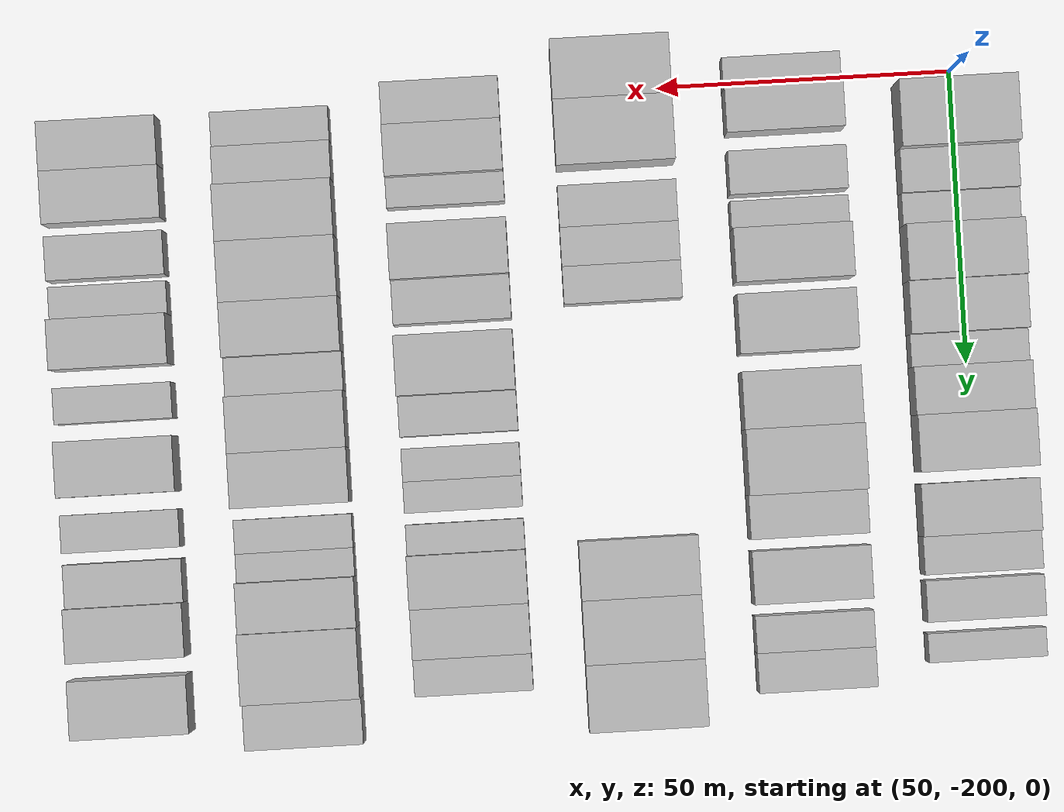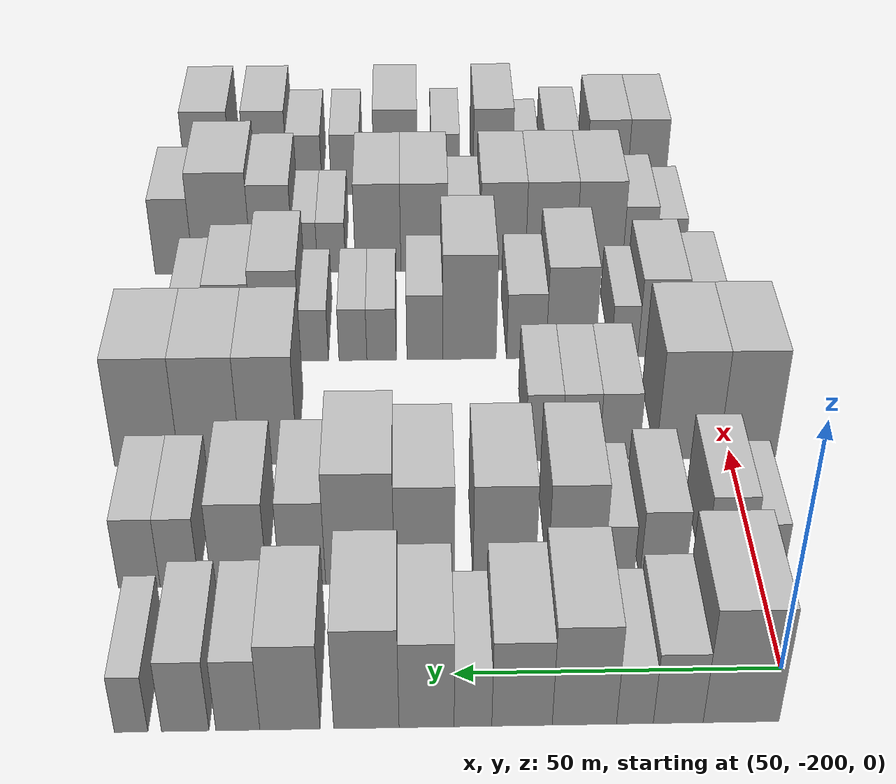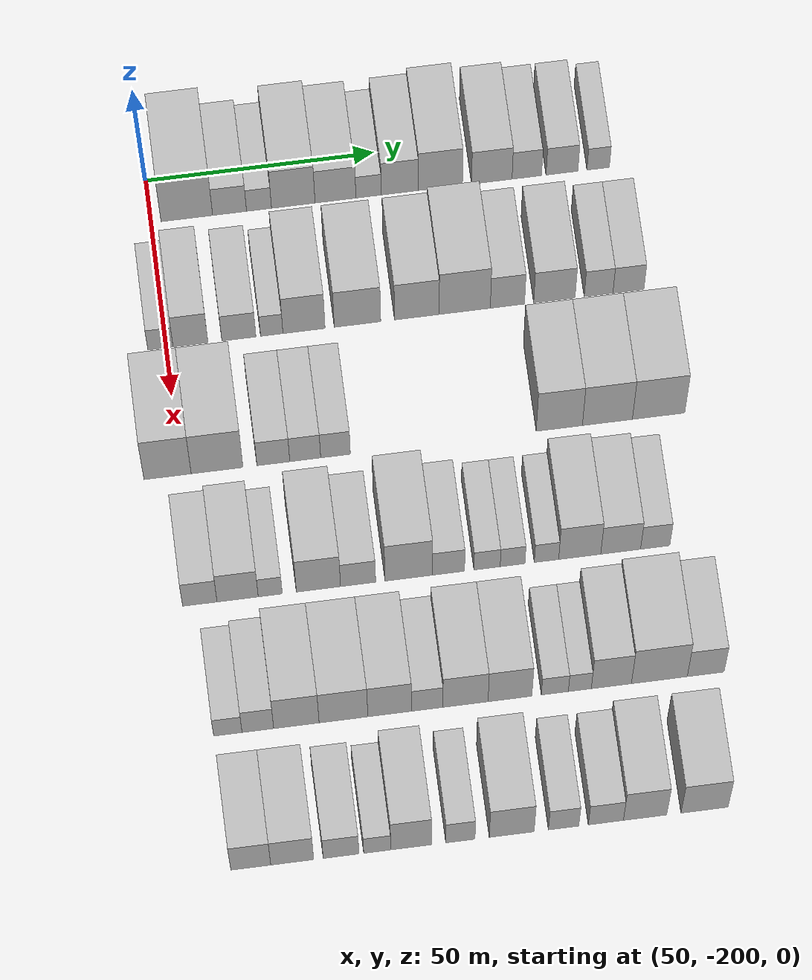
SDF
<sdf version="1.6">
 <world name="default">
  <model name="building_35">
   <static>1</static>
   <pose>50.0000 -192.1654 0 0.000000 0.000000 0.000000</pose>
   <link name="link">
    <pose>0 0 12.00 0 0 0</pose>
    <collision name="collision"><geometry><box><size>20.0000 11.2546 24.0000</size></box></geometry></collision>
    <visual name="visual">
     <cast_shadows>0</cast_shadows>
     <geometry><box><size>20.0000 11.2546 24.0000</size></box></geometry>
     <material>
      <script>
       <uri>model://HANNAS_wall/materials/scripts</uri>
       <uri>model://HANNAS_wall/materials/textures</uri>
       <name>vrc/HANNAS_wall</name>
      </script>
     </material>
    </visual>
   </link>
  </model>
  <model name="building_36">
   <static>1</static>
   <pose>50.0000 -182.8421 0 0.000000 0.000000 0.000000</pose>
   <link name="link">
    <pose>0 0 7.50 0 0 0</pose>
    <collision name="collision"><geometry><box><size>20.0000 7.3919 15.0000</size></box></geometry></collision>
    <visual name="visual">
     <cast_shadows>0</cast_shadows>
     <geometry><box><size>20.0000 7.3919 15.0000</size></box></geometry>
     <material>
      <script>
       <uri>model://HANNAS_wall/materials/scripts</uri>
       <uri>model://HANNAS_wall/materials/textures</uri>
       <name>vrc/HANNAS_wall</name>
      </script>
     </material>
    </visual>
   </link>
  </model>
  <model name="building_37">
   <static>1</static>
   <pose>50.0000 -176.4204 0 0.000000 0.000000 0.000000</pose>
   <link name="link">
    <pose>0 0 6.00 0 0 0</pose>
    <collision name="collision"><geometry><box><size>20.0000 5.4515 12.0000</size></box></geometry></collision>
    <visual name="visual">
     <cast_shadows>0</cast_shadows>
     <geometry><box><size>20.0000 5.4515 12.0000</size></box></geometry>
     <material>
      <script>
       <uri>model://HANNAS_wall/materials/scripts</uri>
       <uri>model://HANNAS_wall/materials/textures</uri>
       <name>vrc/HANNAS_wall</name>
      </script>
     </material>
    </visual>
   </link>
  </model>
  <model name="building_38">
   <static>1</static>
   <pose>50.0000 -168.9401 0 0.000000 0.000000 0.000000</pose>
   <link name="link">
    <pose>0 0 10.50 0 0 0</pose>
    <collision name="collision"><geometry><box><size>20.0000 9.5092 21.0000</size></box></geometry></collision>
    <visual name="visual">
     <cast_shadows>0</cast_shadows>
     <geometry><box><size>20.0000 9.5092 21.0000</size></box></geometry>
     <material>
      <script>
       <uri>model://HANNAS_wall/materials/scripts</uri>
       <uri>model://HANNAS_wall/materials/textures</uri>
       <name>vrc/HANNAS_wall</name>
      </script>
     </material>
    </visual>
   </link>
  </model>
  <model name="building_39">
   <static>1</static>
   <pose>50.0000 -159.7231 0 0.000000 0.000000 0.000000</pose>
   <link name="link">
    <pose>0 0 9.00 0 0 0</pose>
    <collision name="collision"><geometry><box><size>20.0000 8.9248 18.0000</size></box></geometry></collision>
    <visual name="visual">
     <cast_shadows>0</cast_shadows>
     <geometry><box><size>20.0000 8.9248 18.0000</size></box></geometry>
     <material>
      <script>
       <uri>model://HANNAS_wall/materials/scripts</uri>
       <uri>model://HANNAS_wall/materials/textures</uri>
       <name>vrc/HANNAS_wall</name>
      </script>
     </material>
    </visual>
   </link>
  </model>
  <model name="building_40">
   <static>1</static>
   <pose>50.0000 -152.4806 0 0.000000 0.000000 0.000000</pose>
   <link name="link">
    <pose>0 0 6.00 0 0 0</pose>
    <collision name="collision"><geometry><box><size>20.0000 5.5600 12.0000</size></box></geometry></collision>
    <visual name="visual">
     <cast_shadows>0</cast_shadows>
     <geometry><box><size>20.0000 5.5600 12.0000</size></box></geometry>
     <material>
      <script>
       <uri>model://HANNAS_wall/materials/scripts</uri>
       <uri>model://HANNAS_wall/materials/textures</uri>
       <name>vrc/HANNAS_wall</name>
      </script>
     </material>
    </visual>
   </link>
  </model>
  <model name="building_41">
   <static>1</static>
   <pose>50.0000 -145.6434 0 0.000000 0.000000 0.000000</pose>
   <link name="link">
    <pose>0 0 9.00 0 0 0</pose>
    <collision name="collision"><geometry><box><size>20.0000 8.1144 18.0000</size></box></geometry></collision>
    <visual name="visual">
     <cast_shadows>0</cast_shadows>
     <geometry><box><size>20.0000 8.1144 18.0000</size></box></geometry>
     <material>
      <script>
       <uri>model://HANNAS_wall/materials/scripts</uri>
       <uri>model://HANNAS_wall/materials/textures</uri>
       <name>vrc/HANNAS_wall</name>
      </script>
     </material>
    </visual>
   </link>
  </model>
  <model name="building_42">
   <static>1</static>
   <pose>50.0000 -136.7708 0 0.000000 0.000000 0.000000</pose>
   <link name="link">
    <pose>0 0 10.50 0 0 0</pose>
    <collision name="collision"><geometry><box><size>20.0000 9.6309 21.0000</size></box></geometry></collision>
    <visual name="visual">
     <cast_shadows>0</cast_shadows>
     <geometry><box><size>20.0000 9.6309 21.0000</size></box></geometry>
     <material>
      <script>
       <uri>model://HANNAS_wall/materials/scripts</uri>
       <uri>model://HANNAS_wall/materials/textures</uri>
       <name>vrc/HANNAS_wall</name>
      </script>
     </material>
    </visual>
   </link>
  </model>
  <model name="building_43">
   <static>1</static>
   <pose>50.0000 -125.5230 0 0.000000 0.000000 0.000000</pose>
   <link name="link">
    <pose>0 0 9.00 0 0 0</pose>
    <collision name="collision"><geometry><box><size>20.0000 8.8646 18.0000</size></box></geometry></collision>
    <visual name="visual">
     <cast_shadows>0</cast_shadows>
     <geometry><box><size>20.0000 8.8646 18.0000</size></box></geometry>
     <material>
      <script>
       <uri>model://HANNAS_wall/materials/scripts</uri>
       <uri>model://HANNAS_wall/materials/textures</uri>
       <name>vrc/HANNAS_wall</name>
      </script>
     </material>
    </visual>
   </link>
  </model>
  <model name="building_44">
   <static>1</static>
   <pose>50.0000 -117.8614 0 0.000000 0.000000 0.000000</pose>
   <link name="link">
    <pose>0 0 7.50 0 0 0</pose>
    <collision name="collision"><geometry><box><size>20.0000 6.4587 15.0000</size></box></geometry></collision>
    <visual name="visual">
     <cast_shadows>0</cast_shadows>
     <geometry><box><size>20.0000 6.4587 15.0000</size></box></geometry>
     <material>
      <script>
       <uri>model://HANNAS_wall/materials/scripts</uri>
       <uri>model://HANNAS_wall/materials/textures</uri>
       <name>vrc/HANNAS_wall</name>
      </script>
     </material>
    </visual>
   </link>
  </model>
  <model name="building_45">
   <static>1</static>
   <pose>50.0000 -110.1419 0 0.000000 0.000000 0.000000</pose>
   <link name="link">
    <pose>0 0 7.50 0 0 0</pose>
    <collision name="collision"><geometry><box><size>20.0000 6.9802 15.0000</size></box></geometry></collision>
    <visual name="visual">
     <cast_shadows>0</cast_shadows>
     <geometry><box><size>20.0000 6.9802 15.0000</size></box></geometry>
     <material>
      <script>
       <uri>model://HANNAS_wall/materials/scripts</uri>
       <uri>model://HANNAS_wall/materials/textures</uri>
       <name>vrc/HANNAS_wall</name>
      </script>
     </material>
    </visual>
   </link>
  </model>
  <model name="building_46">
   <static>1</static>
   <pose>50.0000 -102.1962 0 0.000000 0.000000 0.000000</pose>
   <link name="link">
    <pose>0 0 6.00 0 0 0</pose>
    <collision name="collision"><geometry><box><size>20.0000 4.9113 12.0000</size></box></geometry></collision>
    <visual name="visual">
     <cast_shadows>0</cast_shadows>
     <geometry><box><size>20.0000 4.9113 12.0000</size></box></geometry>
     <material>
      <script>
       <uri>model://HANNAS_wall/materials/scripts</uri>
       <uri>model://HANNAS_wall/materials/textures</uri>
       <name>vrc/HANNAS_wall</name>
      </script>
     </material>
    </visual>
   </link>
  </model>
  <model name="building_152">
   <static>1</static>
   <pose>79.0000 -201.1668 0 0.000000 0.000000 0.000000</pose>
   <link name="link">
    <pose>0 0 6.00 0 0 0</pose>
    <collision name="collision"><geometry><box><size>20.0000 5.4453 12.0000</size></box></geometry></collision>
    <visual name="visual">
     <cast_shadows>0</cast_shadows>
     <geometry><box><size>20.0000 5.4453 12.0000</size></box></geometry>
     <material>
      <script>
       <uri>model://HANNAS_wall/materials/scripts</uri>
       <uri>model://HANNAS_wall/materials/textures</uri>
       <name>vrc/HANNAS_wall</name>
      </script>
     </material>
    </visual>
   </link>
  </model>
  <model name="building_153">
   <static>1</static>
   <pose>79.0000 -194.6718 0 0.000000 0.000000 0.000000</pose>
   <link name="link">
    <pose>0 0 9.00 0 0 0</pose>
    <collision name="collision"><geometry><box><size>20.0000 7.5448 18.0000</size></box></geometry></collision>
    <visual name="visual">
     <cast_shadows>0</cast_shadows>
     <geometry><box><size>20.0000 7.5448 18.0000</size></box></geometry>
     <material>
      <script>
       <uri>model://HANNAS_wall/materials/scripts</uri>
       <uri>model://HANNAS_wall/materials/textures</uri>
       <name>vrc/HANNAS_wall</name>
      </script>
     </material>
    </visual>
   </link>
  </model>
  <model name="building_154">
   <static>1</static>
   <pose>79.0000 -184.2178 0 0.000000 0.000000 0.000000</pose>
   <link name="link">
    <pose>0 0 7.50 0 0 0</pose>
    <collision name="collision"><geometry><box><size>20.0000 7.3632 15.0000</size></box></geometry></collision>
    <visual name="visual">
     <cast_shadows>0</cast_shadows>
     <geometry><box><size>20.0000 7.3632 15.0000</size></box></geometry>
     <material>
      <script>
       <uri>model://HANNAS_wall/materials/scripts</uri>
       <uri>model://HANNAS_wall/materials/textures</uri>
       <name>vrc/HANNAS_wall</name>
      </script>
     </material>
    </visual>
   </link>
  </model>
  <model name="building_155">
   <static>1</static>
   <pose>79.0000 -177.1134 0 0.000000 0.000000 0.000000</pose>
   <link name="link">
    <pose>0 0 6.00 0 0 0</pose>
    <collision name="collision"><geometry><box><size>20.0000 4.8456 12.0000</size></box></geometry></collision>
    <visual name="visual">
     <cast_shadows>0</cast_shadows>
     <geometry><box><size>20.0000 4.8456 12.0000</size></box></geometry>
     <material>
      <script>
       <uri>model://HANNAS_wall/materials/scripts</uri>
       <uri>model://HANNAS_wall/materials/textures</uri>
       <name>vrc/HANNAS_wall</name>
      </script>
     </material>
    </visual>
   </link>
  </model>
  <model name="building_156">
   <static>1</static>
   <pose>79.0000 -170.1355 0 0.000000 0.000000 0.000000</pose>
   <link name="link">
    <pose>0 0 10.50 0 0 0</pose>
    <collision name="collision"><geometry><box><size>20.0000 9.1101 21.0000</size></box></geometry></collision>
    <visual name="visual">
     <cast_shadows>0</cast_shadows>
     <geometry><box><size>20.0000 9.1101 21.0000</size></box></geometry>
     <material>
      <script>
       <uri>model://HANNAS_wall/materials/scripts</uri>
       <uri>model://HANNAS_wall/materials/textures</uri>
       <name>vrc/HANNAS_wall</name>
      </script>
     </material>
    </visual>
   </link>
  </model>
  <model name="building_157">
   <static>1</static>
   <pose>79.0000 -158.5500 0 0.000000 0.000000 0.000000</pose>
   <link name="link">
    <pose>0 0 10.50 0 0 0</pose>
    <collision name="collision"><geometry><box><size>20.0000 10.0609 21.0000</size></box></geometry></collision>
    <visual name="visual">
     <cast_shadows>0</cast_shadows>
     <geometry><box><size>20.0000 10.0609 21.0000</size></box></geometry>
     <material>
      <script>
       <uri>model://HANNAS_wall/materials/scripts</uri>
       <uri>model://HANNAS_wall/materials/textures</uri>
       <name>vrc/HANNAS_wall</name>
      </script>
     </material>
    </visual>
   </link>
  </model>
  <model name="building_158">
   <static>1</static>
   <pose>79.0000 -145.6790 0 0.000000 0.000000 0.000000</pose>
   <link name="link">
    <pose>0 0 10.50 0 0 0</pose>
    <collision name="collision"><geometry><box><size>20.0000 9.6811 21.0000</size></box></geometry></collision>
    <visual name="visual">
     <cast_shadows>0</cast_shadows>
     <geometry><box><size>20.0000 9.6811 21.0000</size></box></geometry>
     <material>
      <script>
       <uri>model://HANNAS_wall/materials/scripts</uri>
       <uri>model://HANNAS_wall/materials/textures</uri>
       <name>vrc/HANNAS_wall</name>
      </script>
     </material>
    </visual>
   </link>
  </model>
  <model name="building_159">
   <static>1</static>
   <pose>79.0000 -135.2910 0 0.000000 0.000000 0.000000</pose>
   <link name="link">
    <pose>0 0 12.00 0 0 0</pose>
    <collision name="collision"><geometry><box><size>20.0000 11.0948 24.0000</size></box></geometry></collision>
    <visual name="visual">
     <cast_shadows>0</cast_shadows>
     <geometry><box><size>20.0000 11.0948 24.0000</size></box></geometry>
     <material>
      <script>
       <uri>model://HANNAS_wall/materials/scripts</uri>
       <uri>model://HANNAS_wall/materials/textures</uri>
       <name>vrc/HANNAS_wall</name>
      </script>
     </material>
    </visual>
   </link>
  </model>
  <model name="building_160">
   <static>1</static>
   <pose>79.0000 -126.0331 0 0.000000 0.000000 0.000000</pose>
   <link name="link">
    <pose>0 0 9.00 0 0 0</pose>
    <collision name="collision"><geometry><box><size>20.0000 7.4209 18.0000</size></box></geometry></collision>
    <visual name="visual">
     <cast_shadows>0</cast_shadows>
     <geometry><box><size>20.0000 7.4209 18.0000</size></box></geometry>
     <material>
      <script>
       <uri>model://HANNAS_wall/materials/scripts</uri>
       <uri>model://HANNAS_wall/materials/textures</uri>
       <name>vrc/HANNAS_wall</name>
      </script>
     </material>
    </visual>
   </link>
  </model>
  <model name="building_161">
   <static>1</static>
   <pose>79.0000 -115.8313 0 0.000000 0.000000 0.000000</pose>
   <link name="link">
    <pose>0 0 9.00 0 0 0</pose>
    <collision name="collision"><geometry><box><size>20.0000 8.9827 18.0000</size></box></geometry></collision>
    <visual name="visual">
     <cast_shadows>0</cast_shadows>
     <geometry><box><size>20.0000 8.9827 18.0000</size></box></geometry>
     <material>
      <script>
       <uri>model://HANNAS_wall/materials/scripts</uri>
       <uri>model://HANNAS_wall/materials/textures</uri>
       <name>vrc/HANNAS_wall</name>
      </script>
     </material>
    </visual>
   </link>
  </model>
  <model name="building_162">
   <static>1</static>
   <pose>79.0000 -106.2159 0 0.000000 0.000000 0.000000</pose>
   <link name="link">
    <pose>0 0 7.50 0 0 0</pose>
    <collision name="collision"><geometry><box><size>20.0000 6.2481 15.0000</size></box></geometry></collision>
    <visual name="visual">
     <cast_shadows>0</cast_shadows>
     <geometry><box><size>20.0000 6.2481 15.0000</size></box></geometry>
     <material>
      <script>
       <uri>model://HANNAS_wall/materials/scripts</uri>
       <uri>model://HANNAS_wall/materials/textures</uri>
       <name>vrc/HANNAS_wall</name>
      </script>
     </material>
    </visual>
   </link>
  </model>
  <model name="building_163">
   <static>1</static>
   <pose>79.0000 -99.7257 0 0.000000 0.000000 0.000000</pose>
   <link name="link">
    <pose>0 0 7.50 0 0 0</pose>
    <collision name="collision"><geometry><box><size>20.0000 6.7324 15.0000</size></box></geometry></collision>
    <visual name="visual">
     <cast_shadows>0</cast_shadows>
     <geometry><box><size>20.0000 6.7324 15.0000</size></box></geometry>
     <material>
      <script>
       <uri>model://HANNAS_wall/materials/scripts</uri>
       <uri>model://HANNAS_wall/materials/textures</uri>
       <name>vrc/HANNAS_wall</name>
      </script>
     </material>
    </visual>
   </link>
  </model>
  <model name="building_263">
   <static>1</static>
   <pose>108.0000 -202.8969 0 0.000000 0.000000 0.000000</pose>
   <link name="link">
    <pose>0 0 12.00 0 0 0</pose>
    <collision name="collision"><geometry><box><size>20.0000 10.1087 24.0000</size></box></geometry></collision>
    <visual name="visual">
     <cast_shadows>0</cast_shadows>
     <geometry><box><size>20.0000 10.1087 24.0000</size></box></geometry>
     <material>
      <script>
       <uri>model://HANNAS_wall/materials/scripts</uri>
       <uri>model://HANNAS_wall/materials/textures</uri>
       <name>vrc/HANNAS_wall</name>
      </script>
     </material>
    </visual>
   </link>
  </model>
  <model name="building_264">
   <static>1</static>
   <pose>108.0000 -192.3039 0 0.000000 0.000000 0.000000</pose>
   <link name="link">
    <pose>0 0 12.00 0 0 0</pose>
    <collision name="collision"><geometry><box><size>20.0000 11.0774 24.0000</size></box></geometry></collision>
    <visual name="visual">
     <cast_shadows>0</cast_shadows>
     <geometry><box><size>20.0000 11.0774 24.0000</size></box></geometry>
     <material>
      <script>
       <uri>model://HANNAS_wall/materials/scripts</uri>
       <uri>model://HANNAS_wall/materials/textures</uri>
       <name>vrc/HANNAS_wall</name>
      </script>
     </material>
    </visual>
   </link>
  </model>
  <model name="building_265">
   <static>1</static>
   <pose>108.0000 -180.2447 0 0.000000 0.000000 0.000000</pose>
   <link name="link">
    <pose>0 0 7.50 0 0 0</pose>
    <collision name="collision"><geometry><box><size>20.0000 7.0409 15.0000</size></box></geometry></collision>
    <visual name="visual">
     <cast_shadows>0</cast_shadows>
     <geometry><box><size>20.0000 7.0409 15.0000</size></box></geometry>
     <material>
      <script>
       <uri>model://HANNAS_wall/materials/scripts</uri>
       <uri>model://HANNAS_wall/materials/textures</uri>
       <name>vrc/HANNAS_wall</name>
      </script>
     </material>
    </visual>
   </link>
  </model>
  <model name="building_266">
   <static>1</static>
   <pose>108.0000 -173.4134 0 0.000000 0.000000 0.000000</pose>
   <link name="link">
    <pose>0 0 7.50 0 0 0</pose>
    <collision name="collision"><geometry><box><size>20.0000 6.6218 15.0000</size></box></geometry></collision>
    <visual name="visual">
     <cast_shadows>0</cast_shadows>
     <geometry><box><size>20.0000 6.6218 15.0000</size></box></geometry>
     <material>
      <script>
       <uri>model://HANNAS_wall/materials/scripts</uri>
       <uri>model://HANNAS_wall/materials/textures</uri>
       <name>vrc/HANNAS_wall</name>
      </script>
     </material>
    </visual>
   </link>
  </model>
  <model name="building_267">
   <static>1</static>
   <pose>108.0000 -166.9191 0 0.000000 0.000000 0.000000</pose>
   <link name="link">
    <pose>0 0 7.50 0 0 0</pose>
    <collision name="collision"><geometry><box><size>20.0000 6.3668 15.0000</size></box></geometry></collision>
    <visual name="visual">
     <cast_shadows>0</cast_shadows>
     <geometry><box><size>20.0000 6.3668 15.0000</size></box></geometry>
     <material>
      <script>
       <uri>model://HANNAS_wall/materials/scripts</uri>
       <uri>model://HANNAS_wall/materials/textures</uri>
       <name>vrc/HANNAS_wall</name>
      </script>
     </material>
    </visual>
   </link>
  </model>
  <model name="building_268">
   <static>1</static>
   <pose>108.0000 -118.7879 0 0.000000 0.000000 0.000000</pose>
   <link name="link">
    <pose>0 0 12.00 0 0 0</pose>
    <collision name="collision"><geometry><box><size>20.0000 9.9652 24.0000</size></box></geometry></collision>
    <visual name="visual">
     <cast_shadows>0</cast_shadows>
     <geometry><box><size>20.0000 9.9652 24.0000</size></box></geometry>
     <material>
      <script>
       <uri>model://HANNAS_wall/materials/scripts</uri>
       <uri>model://HANNAS_wall/materials/textures</uri>
       <name>vrc/HANNAS_wall</name>
      </script>
     </material>
    </visual>
   </link>
  </model>
  <model name="building_269">
   <static>1</static>
   <pose>108.0000 -108.4171 0 0.000000 0.000000 0.000000</pose>
   <link name="link">
    <pose>0 0 12.00 0 0 0</pose>
    <collision name="collision"><geometry><box><size>20.0000 10.7764 24.0000</size></box></geometry></collision>
    <visual name="visual">
     <cast_shadows>0</cast_shadows>
     <geometry><box><size>20.0000 10.7764 24.0000</size></box></geometry>
     <material>
      <script>
       <uri>model://HANNAS_wall/materials/scripts</uri>
       <uri>model://HANNAS_wall/materials/textures</uri>
       <name>vrc/HANNAS_wall</name>
      </script>
     </material>
    </visual>
   </link>
  </model>
  <model name="building_270">
   <static>1</static>
   <pose>108.0000 -97.3822 0 0.000000 0.000000 0.000000</pose>
   <link name="link">
    <pose>0 0 12.00 0 0 0</pose>
    <collision name="collision"><geometry><box><size>20.0000 11.2934 24.0000</size></box></geometry></collision>
    <visual name="visual">
     <cast_shadows>0</cast_shadows>
     <geometry><box><size>20.0000 11.2934 24.0000</size></box></geometry>
     <material>
      <script>
       <uri>model://HANNAS_wall/materials/scripts</uri>
       <uri>model://HANNAS_wall/materials/textures</uri>
       <name>vrc/HANNAS_wall</name>
      </script>
     </material>
    </visual>
   </link>
  </model>
  <model name="building_378">
   <static>1</static>
   <pose>137.0000 -199.3293 0 0.000000 0.000000 0.000000</pose>
   <link name="link">
    <pose>0 0 7.50 0 0 0</pose>
    <collision name="collision"><geometry><box><size>20.0000 7.2960 15.0000</size></box></geometry></collision>
    <visual name="visual">
     <cast_shadows>0</cast_shadows>
     <geometry><box><size>20.0000 7.2960 15.0000</size></box></geometry>
     <material>
      <script>
       <uri>model://HANNAS_wall/materials/scripts</uri>
       <uri>model://HANNAS_wall/materials/textures</uri>
       <name>vrc/HANNAS_wall</name>
      </script>
     </material>
    </visual>
   </link>
  </model>
  <model name="building_379">
   <static>1</static>
   <pose>137.0000 -191.3100 0 0.000000 0.000000 0.000000</pose>
   <link name="link">
    <pose>0 0 9.00 0 0 0</pose>
    <collision name="collision"><geometry><box><size>20.0000 8.7424 18.0000</size></box></geometry></collision>
    <visual name="visual">
     <cast_shadows>0</cast_shadows>
     <geometry><box><size>20.0000 8.7424 18.0000</size></box></geometry>
     <material>
      <script>
       <uri>model://HANNAS_wall/materials/scripts</uri>
       <uri>model://HANNAS_wall/materials/textures</uri>
       <name>vrc/HANNAS_wall</name>
      </script>
     </material>
    </visual>
   </link>
  </model>
  <model name="building_380">
   <static>1</static>
   <pose>137.0000 -184.3885 0 0.000000 0.000000 0.000000</pose>
   <link name="link">
    <pose>0 0 6.00 0 0 0</pose>
    <collision name="collision"><geometry><box><size>20.0000 5.1006 12.0000</size></box></geometry></collision>
    <visual name="visual">
     <cast_shadows>0</cast_shadows>
     <geometry><box><size>20.0000 5.1006 12.0000</size></box></geometry>
     <material>
      <script>
       <uri>model://HANNAS_wall/materials/scripts</uri>
       <uri>model://HANNAS_wall/materials/textures</uri>
       <name>vrc/HANNAS_wall</name>
      </script>
     </material>
    </visual>
   </link>
  </model>
  <model name="building_381">
   <static>1</static>
   <pose>137.0000 -174.1424 0 0.000000 0.000000 0.000000</pose>
   <link name="link">
    <pose>0 0 10.50 0 0 0</pose>
    <collision name="collision"><geometry><box><size>20.0000 9.3916 21.0000</size></box></geometry></collision>
    <visual name="visual">
     <cast_shadows>0</cast_shadows>
     <geometry><box><size>20.0000 9.3916 21.0000</size></box></geometry>
     <material>
      <script>
       <uri>model://HANNAS_wall/materials/scripts</uri>
       <uri>model://HANNAS_wall/materials/textures</uri>
       <name>vrc/HANNAS_wall</name>
      </script>
     </material>
    </visual>
   </link>
  </model>
  <model name="building_382">
   <static>1</static>
   <pose>137.0000 -165.7103 0 0.000000 0.000000 0.000000</pose>
   <link name="link">
    <pose>0 0 7.50 0 0 0</pose>
    <collision name="collision"><geometry><box><size>20.0000 7.4726 15.0000</size></box></geometry></collision>
    <visual name="visual">
     <cast_shadows>0</cast_shadows>
     <geometry><box><size>20.0000 7.4726 15.0000</size></box></geometry>
     <material>
      <script>
       <uri>model://HANNAS_wall/materials/scripts</uri>
       <uri>model://HANNAS_wall/materials/textures</uri>
       <name>vrc/HANNAS_wall</name>
      </script>
     </material>
    </visual>
   </link>
  </model>
  <model name="building_383">
   <static>1</static>
   <pose>137.0000 -154.9112 0 0.000000 0.000000 0.000000</pose>
   <link name="link">
    <pose>0 0 12.00 0 0 0</pose>
    <collision name="collision"><geometry><box><size>20.0000 10.1257 24.0000</size></box></geometry></collision>
    <visual name="visual">
     <cast_shadows>0</cast_shadows>
     <geometry><box><size>20.0000 10.1257 24.0000</size></box></geometry>
     <material>
      <script>
       <uri>model://HANNAS_wall/materials/scripts</uri>
       <uri>model://HANNAS_wall/materials/textures</uri>
       <name>vrc/HANNAS_wall</name>
      </script>
     </material>
    </visual>
   </link>
  </model>
  <model name="building_384">
   <static>1</static>
   <pose>137.0000 -146.4432 0 0.000000 0.000000 0.000000</pose>
   <link name="link">
    <pose>0 0 7.50 0 0 0</pose>
    <collision name="collision"><geometry><box><size>20.0000 6.8103 15.0000</size></box></geometry></collision>
    <visual name="visual">
     <cast_shadows>0</cast_shadows>
     <geometry><box><size>20.0000 6.8103 15.0000</size></box></geometry>
     <material>
      <script>
       <uri>model://HANNAS_wall/materials/scripts</uri>
       <uri>model://HANNAS_wall/materials/textures</uri>
       <name>vrc/HANNAS_wall</name>
      </script>
     </material>
    </visual>
   </link>
  </model>
  <model name="building_385">
   <static>1</static>
   <pose>137.0000 -138.2403 0 0.000000 0.000000 0.000000</pose>
   <link name="link">
    <pose>0 0 6.00 0 0 0</pose>
    <collision name="collision"><geometry><box><size>20.0000 5.5955 12.0000</size></box></geometry></collision>
    <visual name="visual">
     <cast_shadows>0</cast_shadows>
     <geometry><box><size>20.0000 5.5955 12.0000</size></box></geometry>
     <material>
      <script>
       <uri>model://HANNAS_wall/materials/scripts</uri>
       <uri>model://HANNAS_wall/materials/textures</uri>
       <name>vrc/HANNAS_wall</name>
      </script>
     </material>
    </visual>
   </link>
  </model>
  <model name="building_386">
   <static>1</static>
   <pose>137.0000 -132.7976 0 0.000000 0.000000 0.000000</pose>
   <link name="link">
    <pose>0 0 6.00 0 0 0</pose>
    <collision name="collision"><geometry><box><size>20.0000 5.2899 12.0000</size></box></geometry></collision>
    <visual name="visual">
     <cast_shadows>0</cast_shadows>
     <geometry><box><size>20.0000 5.2899 12.0000</size></box></geometry>
     <material>
      <script>
       <uri>model://HANNAS_wall/materials/scripts</uri>
       <uri>model://HANNAS_wall/materials/textures</uri>
       <name>vrc/HANNAS_wall</name>
      </script>
     </material>
    </visual>
   </link>
  </model>
  <model name="building_387">
   <static>1</static>
   <pose>137.0000 -125.5580 0 0.000000 0.000000 0.000000</pose>
   <link name="link">
    <pose>0 0 6.00 0 0 0</pose>
    <collision name="collision"><geometry><box><size>20.0000 5.1892 12.0000</size></box></geometry></collision>
    <visual name="visual">
     <cast_shadows>0</cast_shadows>
     <geometry><box><size>20.0000 5.1892 12.0000</size></box></geometry>
     <material>
      <script>
       <uri>model://HANNAS_wall/materials/scripts</uri>
       <uri>model://HANNAS_wall/materials/textures</uri>
       <name>vrc/HANNAS_wall</name>
      </script>
     </material>
    </visual>
   </link>
  </model>
  <model name="building_388">
   <static>1</static>
   <pose>137.0000 -118.4653 0 0.000000 0.000000 0.000000</pose>
   <link name="link">
    <pose>0 0 10.50 0 0 0</pose>
    <collision name="collision"><geometry><box><size>20.0000 8.9961 21.0000</size></box></geometry></collision>
    <visual name="visual">
     <cast_shadows>0</cast_shadows>
     <geometry><box><size>20.0000 8.9961 21.0000</size></box></geometry>
     <material>
      <script>
       <uri>model://HANNAS_wall/materials/scripts</uri>
       <uri>model://HANNAS_wall/materials/textures</uri>
       <name>vrc/HANNAS_wall</name>
      </script>
     </material>
    </visual>
   </link>
  </model>
  <model name="building_389">
   <static>1</static>
   <pose>137.0000 -109.7080 0 0.000000 0.000000 0.000000</pose>
   <link name="link">
    <pose>0 0 9.00 0 0 0</pose>
    <collision name="collision"><geometry><box><size>20.0000 8.5186 18.0000</size></box></geometry></collision>
    <visual name="visual">
     <cast_shadows>0</cast_shadows>
     <geometry><box><size>20.0000 8.5186 18.0000</size></box></geometry>
     <material>
      <script>
       <uri>model://HANNAS_wall/materials/scripts</uri>
       <uri>model://HANNAS_wall/materials/textures</uri>
       <name>vrc/HANNAS_wall</name>
      </script>
     </material>
    </visual>
   </link>
  </model>
  <model name="building_390">
   <static>1</static>
   <pose>137.0000 -102.3243 0 0.000000 0.000000 0.000000</pose>
   <link name="link">
    <pose>0 0 7.50 0 0 0</pose>
    <collision name="collision"><geometry><box><size>20.0000 6.2487 15.0000</size></box></geometry></collision>
    <visual name="visual">
     <cast_shadows>0</cast_shadows>
     <geometry><box><size>20.0000 6.2487 15.0000</size></box></geometry>
     <material>
      <script>
       <uri>model://HANNAS_wall/materials/scripts</uri>
       <uri>model://HANNAS_wall/materials/textures</uri>
       <name>vrc/HANNAS_wall</name>
      </script>
     </material>
    </visual>
   </link>
  </model>
  <model name="building_500">
   <static>1</static>
   <pose>166.0000 -196.7804 0 0.000000 0.000000 0.000000</pose>
   <link name="link">
    <pose>0 0 6.00 0 0 0</pose>
    <collision name="collision"><geometry><box><size>20.0000 5.9667 12.0000</size></box></geometry></collision>
    <visual name="visual">
     <cast_shadows>0</cast_shadows>
     <geometry><box><size>20.0000 5.9667 12.0000</size></box></geometry>
     <material>
      <script>
       <uri>model://HANNAS_wall/materials/scripts</uri>
       <uri>model://HANNAS_wall/materials/textures</uri>
       <name>vrc/HANNAS_wall</name>
      </script>
     </material>
    </visual>
   </link>
  </model>
  <model name="building_501">
   <static>1</static>
   <pose>166.0000 -190.4665 0 0.000000 0.000000 0.000000</pose>
   <link name="link">
    <pose>0 0 7.50 0 0 0</pose>
    <collision name="collision"><geometry><box><size>20.0000 6.6611 15.0000</size></box></geometry></collision>
    <visual name="visual">
     <cast_shadows>0</cast_shadows>
     <geometry><box><size>20.0000 6.6611 15.0000</size></box></geometry>
     <material>
      <script>
       <uri>model://HANNAS_wall/materials/scripts</uri>
       <uri>model://HANNAS_wall/materials/textures</uri>
       <name>vrc/HANNAS_wall</name>
      </script>
     </material>
    </visual>
   </link>
  </model>
  <model name="building_502">
   <static>1</static>
   <pose>166.0000 -182.3557 0 0.000000 0.000000 0.000000</pose>
   <link name="link">
    <pose>0 0 10.50 0 0 0</pose>
    <collision name="collision"><geometry><box><size>20.0000 9.5606 21.0000</size></box></geometry></collision>
    <visual name="visual">
     <cast_shadows>0</cast_shadows>
     <geometry><box><size>20.0000 9.5606 21.0000</size></box></geometry>
     <material>
      <script>
       <uri>model://HANNAS_wall/materials/scripts</uri>
       <uri>model://HANNAS_wall/materials/textures</uri>
       <name>vrc/HANNAS_wall</name>
      </script>
     </material>
    </visual>
   </link>
  </model>
  <model name="building_503">
   <static>1</static>
   <pose>166.0000 -172.4420 0 0.000000 0.000000 0.000000</pose>
   <link name="link">
    <pose>0 0 10.50 0 0 0</pose>
    <collision name="collision"><geometry><box><size>20.0000 10.2667 21.0000</size></box></geometry></collision>
    <visual name="visual">
     <cast_shadows>0</cast_shadows>
     <geometry><box><size>20.0000 10.2667 21.0000</size></box></geometry>
     <material>
      <script>
       <uri>model://HANNAS_wall/materials/scripts</uri>
       <uri>model://HANNAS_wall/materials/textures</uri>
       <name>vrc/HANNAS_wall</name>
      </script>
     </material>
    </visual>
   </link>
  </model>
  <model name="building_504">
   <static>1</static>
   <pose>166.0000 -162.6959 0 0.000000 0.000000 0.000000</pose>
   <link name="link">
    <pose>0 0 10.50 0 0 0</pose>
    <collision name="collision"><geometry><box><size>20.0000 9.2255 21.0000</size></box></geometry></collision>
    <visual name="visual">
     <cast_shadows>0</cast_shadows>
     <geometry><box><size>20.0000 9.2255 21.0000</size></box></geometry>
     <material>
      <script>
       <uri>model://HANNAS_wall/materials/scripts</uri>
       <uri>model://HANNAS_wall/materials/textures</uri>
       <name>vrc/HANNAS_wall</name>
      </script>
     </material>
    </visual>
   </link>
  </model>
  <model name="building_505">
   <static>1</static>
   <pose>166.0000 -154.7726 0 0.000000 0.000000 0.000000</pose>
   <link name="link">
    <pose>0 0 7.50 0 0 0</pose>
    <collision name="collision"><geometry><box><size>20.0000 6.6212 15.0000</size></box></geometry></collision>
    <visual name="visual">
     <cast_shadows>0</cast_shadows>
     <geometry><box><size>20.0000 6.6212 15.0000</size></box></geometry>
     <material>
      <script>
       <uri>model://HANNAS_wall/materials/scripts</uri>
       <uri>model://HANNAS_wall/materials/textures</uri>
       <name>vrc/HANNAS_wall</name>
      </script>
     </material>
    </visual>
   </link>
  </model>
  <model name="building_506">
   <static>1</static>
   <pose>166.0000 -146.6864 0 0.000000 0.000000 0.000000</pose>
   <link name="link">
    <pose>0 0 10.50 0 0 0</pose>
    <collision name="collision"><geometry><box><size>20.0000 9.5512 21.0000</size></box></geometry></collision>
    <visual name="visual">
     <cast_shadows>0</cast_shadows>
     <geometry><box><size>20.0000 9.5512 21.0000</size></box></geometry>
     <material>
      <script>
       <uri>model://HANNAS_wall/materials/scripts</uri>
       <uri>model://HANNAS_wall/materials/textures</uri>
       <name>vrc/HANNAS_wall</name>
      </script>
     </material>
    </visual>
   </link>
  </model>
  <model name="building_507">
   <static>1</static>
   <pose>166.0000 -137.2844 0 0.000000 0.000000 0.000000</pose>
   <link name="link">
    <pose>0 0 10.50 0 0 0</pose>
    <collision name="collision"><geometry><box><size>20.0000 9.2528 21.0000</size></box></geometry></collision>
    <visual name="visual">
     <cast_shadows>0</cast_shadows>
     <geometry><box><size>20.0000 9.2528 21.0000</size></box></geometry>
     <material>
      <script>
       <uri>model://HANNAS_wall/materials/scripts</uri>
       <uri>model://HANNAS_wall/materials/textures</uri>
       <name>vrc/HANNAS_wall</name>
      </script>
     </material>
    </visual>
   </link>
  </model>
  <model name="building_508">
   <static>1</static>
   <pose>166.0000 -127.7988 0 0.000000 0.000000 0.000000</pose>
   <link name="link">
    <pose>0 0 6.00 0 0 0</pose>
    <collision name="collision"><geometry><box><size>20.0000 5.7183 12.0000</size></box></geometry></collision>
    <visual name="visual">
     <cast_shadows>0</cast_shadows>
     <geometry><box><size>20.0000 5.7183 12.0000</size></box></geometry>
     <material>
      <script>
       <uri>model://HANNAS_wall/materials/scripts</uri>
       <uri>model://HANNAS_wall/materials/textures</uri>
       <name>vrc/HANNAS_wall</name>
      </script>
     </material>
    </visual>
   </link>
  </model>
  <model name="building_509">
   <static>1</static>
   <pose>166.0000 -122.5093 0 0.000000 0.000000 0.000000</pose>
   <link name="link">
    <pose>0 0 6.00 0 0 0</pose>
    <collision name="collision"><geometry><box><size>20.0000 4.8607 12.0000</size></box></geometry></collision>
    <visual name="visual">
     <cast_shadows>0</cast_shadows>
     <geometry><box><size>20.0000 4.8607 12.0000</size></box></geometry>
     <material>
      <script>
       <uri>model://HANNAS_wall/materials/scripts</uri>
       <uri>model://HANNAS_wall/materials/textures</uri>
       <name>vrc/HANNAS_wall</name>
      </script>
     </material>
    </visual>
   </link>
  </model>
  <model name="building_510">
   <static>1</static>
   <pose>166.0000 -115.8273 0 0.000000 0.000000 0.000000</pose>
   <link name="link">
    <pose>0 0 10.50 0 0 0</pose>
    <collision name="collision"><geometry><box><size>20.0000 8.5033 21.0000</size></box></geometry></collision>
    <visual name="visual">
     <cast_shadows>0</cast_shadows>
     <geometry><box><size>20.0000 8.5033 21.0000</size></box></geometry>
     <material>
      <script>
       <uri>model://HANNAS_wall/materials/scripts</uri>
       <uri>model://HANNAS_wall/materials/textures</uri>
       <name>vrc/HANNAS_wall</name>
      </script>
     </material>
    </visual>
   </link>
  </model>
  <model name="building_511">
   <static>1</static>
   <pose>166.0000 -105.6524 0 0.000000 0.000000 0.000000</pose>
   <link name="link">
    <pose>0 0 12.00 0 0 0</pose>
    <collision name="collision"><geometry><box><size>20.0000 11.8465 24.0000</size></box></geometry></collision>
    <visual name="visual">
     <cast_shadows>0</cast_shadows>
     <geometry><box><size>20.0000 11.8465 24.0000</size></box></geometry>
     <material>
      <script>
       <uri>model://HANNAS_wall/materials/scripts</uri>
       <uri>model://HANNAS_wall/materials/textures</uri>
       <name>vrc/HANNAS_wall</name>
      </script>
     </material>
    </visual>
   </link>
  </model>
  <model name="building_512">
   <static>1</static>
   <pose>166.0000 -95.8288 0 0.000000 0.000000 0.000000</pose>
   <link name="link">
    <pose>0 0 9.00 0 0 0</pose>
    <collision name="collision"><geometry><box><size>20.0000 7.8006 18.0000</size></box></geometry></collision>
    <visual name="visual">
     <cast_shadows>0</cast_shadows>
     <geometry><box><size>20.0000 7.8006 18.0000</size></box></geometry>
     <material>
      <script>
       <uri>model://HANNAS_wall/materials/scripts</uri>
       <uri>model://HANNAS_wall/materials/textures</uri>
       <name>vrc/HANNAS_wall</name>
      </script>
     </material>
    </visual>
   </link>
  </model>
  <model name="building_616">
   <static>1</static>
   <pose>195.0000 -195.3913 0 0.000000 0.000000 0.000000</pose>
   <link name="link">
    <pose>0 0 9.00 0 0 0</pose>
    <collision name="collision"><geometry><box><size>20.0000 8.3406 18.0000</size></box></geometry></collision>
    <visual name="visual">
     <cast_shadows>0</cast_shadows>
     <geometry><box><size>20.0000 8.3406 18.0000</size></box></geometry>
     <material>
      <script>
       <uri>model://HANNAS_wall/materials/scripts</uri>
       <uri>model://HANNAS_wall/materials/textures</uri>
       <name>vrc/HANNAS_wall</name>
      </script>
     </material>
    </visual>
   </link>
  </model>
  <model name="building_617">
   <static>1</static>
   <pose>195.0000 -186.7503 0 0.000000 0.000000 0.000000</pose>
   <link name="link">
    <pose>0 0 9.00 0 0 0</pose>
    <collision name="collision"><geometry><box><size>20.0000 8.9413 18.0000</size></box></geometry></collision>
    <visual name="visual">
     <cast_shadows>0</cast_shadows>
     <geometry><box><size>20.0000 8.9413 18.0000</size></box></geometry>
     <material>
      <script>
       <uri>model://HANNAS_wall/materials/scripts</uri>
       <uri>model://HANNAS_wall/materials/textures</uri>
       <name>vrc/HANNAS_wall</name>
      </script>
     </material>
    </visual>
   </link>
  </model>
  <model name="building_618">
   <static>1</static>
   <pose>195.0000 -176.5505 0 0.000000 0.000000 0.000000</pose>
   <link name="link">
    <pose>0 0 7.50 0 0 0</pose>
    <collision name="collision"><geometry><box><size>20.0000 7.4585 15.0000</size></box></geometry></collision>
    <visual name="visual">
     <cast_shadows>0</cast_shadows>
     <geometry><box><size>20.0000 7.4585 15.0000</size></box></geometry>
     <material>
      <script>
       <uri>model://HANNAS_wall/materials/scripts</uri>
       <uri>model://HANNAS_wall/materials/textures</uri>
       <name>vrc/HANNAS_wall</name>
      </script>
     </material>
    </visual>
   </link>
  </model>
  <model name="building_619">
   <static>1</static>
   <pose>195.0000 -168.9882 0 0.000000 0.000000 0.000000</pose>
   <link name="link">
    <pose>0 0 6.00 0 0 0</pose>
    <collision name="collision"><geometry><box><size>20.0000 5.6660 12.0000</size></box></geometry></collision>
    <visual name="visual">
     <cast_shadows>0</cast_shadows>
     <geometry><box><size>20.0000 5.6660 12.0000</size></box></geometry>
     <material>
      <script>
       <uri>model://HANNAS_wall/materials/scripts</uri>
       <uri>model://HANNAS_wall/materials/textures</uri>
       <name>vrc/HANNAS_wall</name>
      </script>
     </material>
    </visual>
   </link>
  </model>
  <model name="building_620">
   <static>1</static>
   <pose>195.0000 -161.9033 0 0.000000 0.000000 0.000000</pose>
   <link name="link">
    <pose>0 0 10.50 0 0 0</pose>
    <collision name="collision"><geometry><box><size>20.0000 8.5040 21.0000</size></box></geometry></collision>
    <visual name="visual">
     <cast_shadows>0</cast_shadows>
     <geometry><box><size>20.0000 8.5040 21.0000</size></box></geometry>
     <material>
      <script>
       <uri>model://HANNAS_wall/materials/scripts</uri>
       <uri>model://HANNAS_wall/materials/textures</uri>
       <name>vrc/HANNAS_wall</name>
      </script>
     </material>
    </visual>
   </link>
  </model>
  <model name="building_621">
   <static>1</static>
   <pose>195.0000 -151.6034 0 0.000000 0.000000 0.000000</pose>
   <link name="link">
    <pose>0 0 7.50 0 0 0</pose>
    <collision name="collision"><geometry><box><size>20.0000 6.0958 15.0000</size></box></geometry></collision>
    <visual name="visual">
     <cast_shadows>0</cast_shadows>
     <geometry><box><size>20.0000 6.0958 15.0000</size></box></geometry>
     <material>
      <script>
       <uri>model://HANNAS_wall/materials/scripts</uri>
       <uri>model://HANNAS_wall/materials/textures</uri>
       <name>vrc/HANNAS_wall</name>
      </script>
     </material>
    </visual>
   </link>
  </model>
  <model name="building_622">
   <static>1</static>
   <pose>195.0000 -140.8624 0 0.000000 0.000000 0.000000</pose>
   <link name="link">
    <pose>0 0 10.50 0 0 0</pose>
    <collision name="collision"><geometry><box><size>20.0000 9.3862 21.0000</size></box></geometry></collision>
    <visual name="visual">
     <cast_shadows>0</cast_shadows>
     <geometry><box><size>20.0000 9.3862 21.0000</size></box></geometry>
     <material>
      <script>
       <uri>model://HANNAS_wall/materials/scripts</uri>
       <uri>model://HANNAS_wall/materials/textures</uri>
       <name>vrc/HANNAS_wall</name>
      </script>
     </material>
    </visual>
   </link>
  </model>
  <model name="building_623">
   <static>1</static>
   <pose>195.0000 -129.9824 0 0.000000 0.000000 0.000000</pose>
   <link name="link">
    <pose>0 0 7.50 0 0 0</pose>
    <collision name="collision"><geometry><box><size>20.0000 6.3738 15.0000</size></box></geometry></collision>
    <visual name="visual">
     <cast_shadows>0</cast_shadows>
     <geometry><box><size>20.0000 6.3738 15.0000</size></box></geometry>
     <material>
      <script>
       <uri>model://HANNAS_wall/materials/scripts</uri>
       <uri>model://HANNAS_wall/materials/textures</uri>
       <name>vrc/HANNAS_wall</name>
      </script>
     </material>
    </visual>
   </link>
  </model>
  <model name="building_624">
   <static>1</static>
   <pose>195.0000 -121.1155 0 0.000000 0.000000 0.000000</pose>
   <link name="link">
    <pose>0 0 7.50 0 0 0</pose>
    <collision name="collision"><geometry><box><size>20.0000 7.3600 15.0000</size></box></geometry></collision>
    <visual name="visual">
     <cast_shadows>0</cast_shadows>
     <geometry><box><size>20.0000 7.3600 15.0000</size></box></geometry>
     <material>
      <script>
       <uri>model://HANNAS_wall/materials/scripts</uri>
       <uri>model://HANNAS_wall/materials/textures</uri>
       <name>vrc/HANNAS_wall</name>
      </script>
     </material>
    </visual>
   </link>
  </model>
  <model name="building_625">
   <static>1</static>
   <pose>195.0000 -112.8869 0 0.000000 0.000000 0.000000</pose>
   <link name="link">
    <pose>0 0 10.50 0 0 0</pose>
    <collision name="collision"><geometry><box><size>20.0000 9.0970 21.0000</size></box></geometry></collision>
    <visual name="visual">
     <cast_shadows>0</cast_shadows>
     <geometry><box><size>20.0000 9.0970 21.0000</size></box></geometry>
     <material>
      <script>
       <uri>model://HANNAS_wall/materials/scripts</uri>
       <uri>model://HANNAS_wall/materials/textures</uri>
       <name>vrc/HANNAS_wall</name>
      </script>
     </material>
    </visual>
   </link>
  </model>
  <model name="building_626">
   <static>1</static>
   <pose>195.0000 -100.3996 0 0.000000 0.000000 0.000000</pose>
   <link name="link">
    <pose>0 0 10.50 0 0 0</pose>
    <collision name="collision"><geometry><box><size>20.0000 9.8778 21.0000</size></box></geometry></collision>
    <visual name="visual">
     <cast_shadows>0</cast_shadows>
     <geometry><box><size>20.0000 9.8778 21.0000</size></box></geometry>
     <material>
      <script>
       <uri>model://HANNAS_wall/materials/scripts</uri>
       <uri>model://HANNAS_wall/materials/textures</uri>
       <name>vrc/HANNAS_wall</name>
      </script>
     </material>
    </visual>
   </link>
  </model>
 </world>
</sdf>
